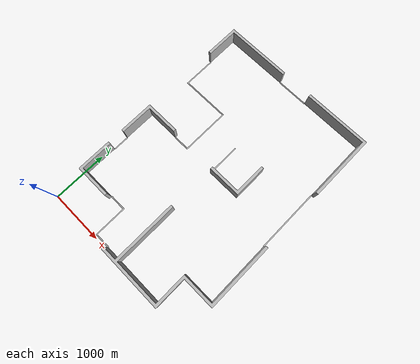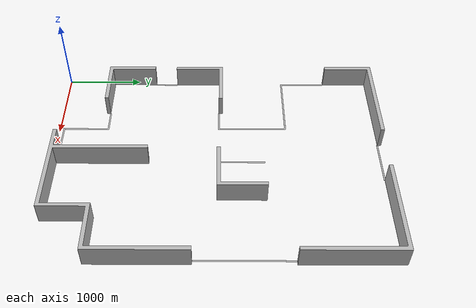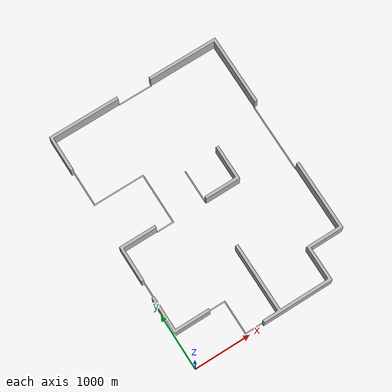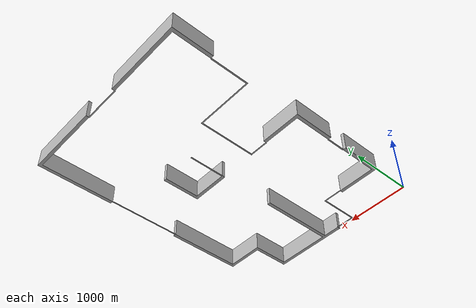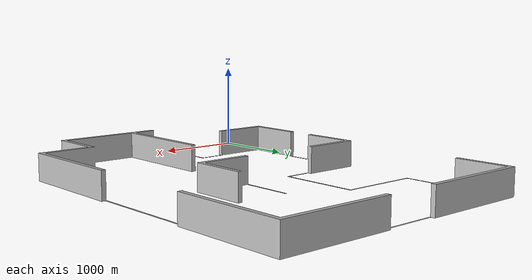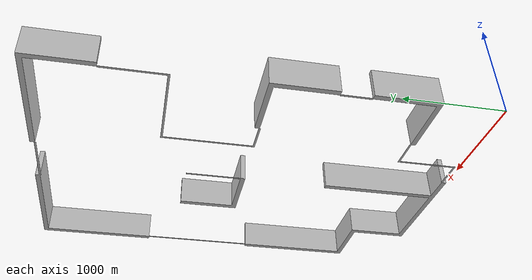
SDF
<?xml version="1.0"?>
<sdf version="1.6">
  <model name="my_map">
    <static>true</static>
    <link name="map_link">
      <visual name="map_visual">
        <geometry>
          <mesh>
            <uri>model://my_map/meshes/group3_project_map.stl</uri>
          </mesh>
        </geometry>
      </visual>
      <collision name="map_collision">
        <geometry>
          <mesh>
            <uri>model://my_map/meshes/group3_project_map.stl</uri>
          </mesh>
        </geometry>
      </collision>
    </link>
  </model>
</sdf>
